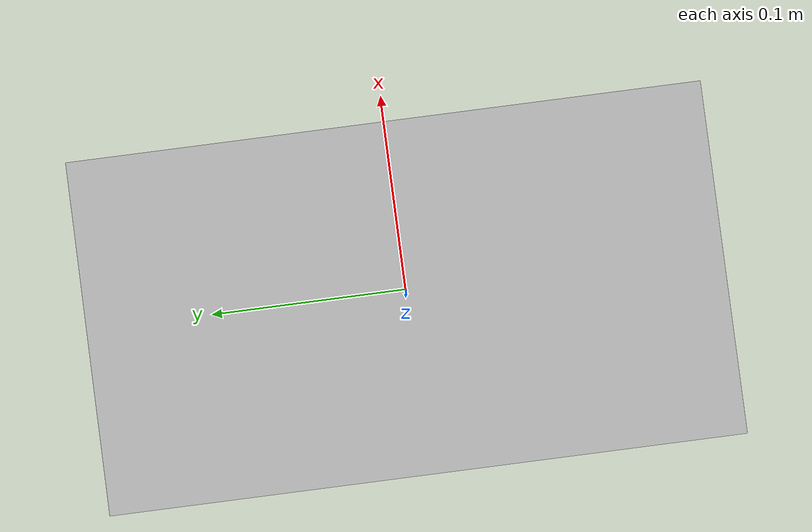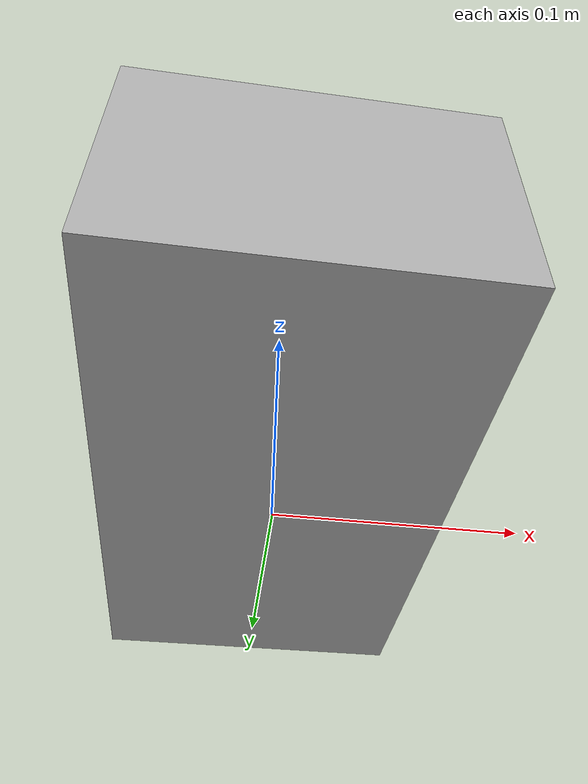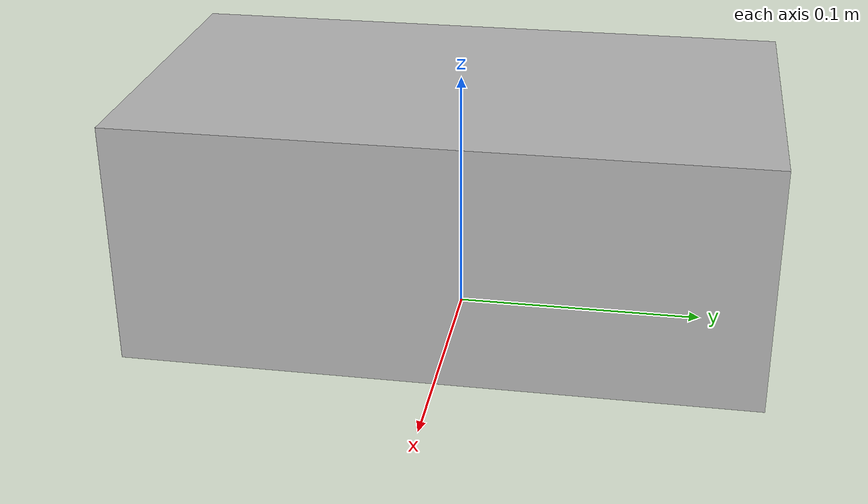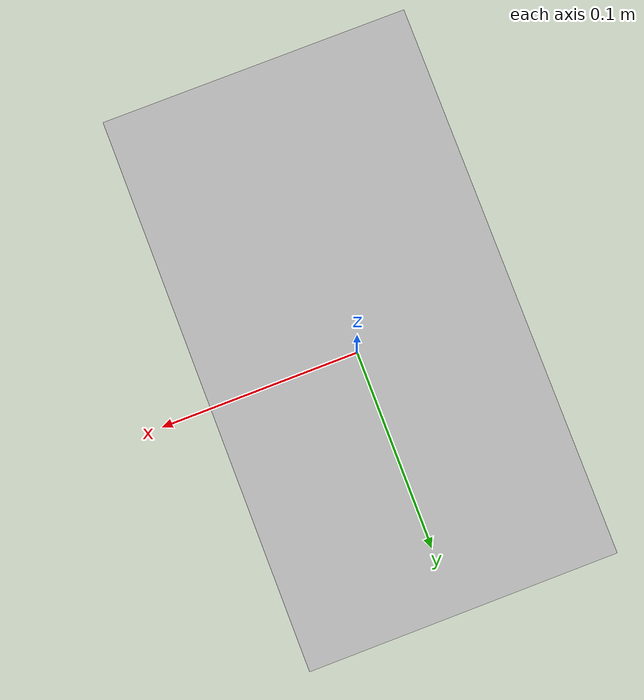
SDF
<sdf version='1.7'>
  <model name='XSensStyleModel_template'>
    <link name='Pelvis'>
      <inertial>
        <pose>0 0 0.049743 0 -0 0</pose>
        <mass>4.976</mass>
        <inertia>
          <ixx>0.029678</ixx>
          <ixy>0</ixy>
          <ixz>0</ixz>
          <iyy>0.011854</iyy>
          <iyz>0</iyz>
          <izz>0.033653</izz>
        </inertia>
      </inertial>
      <collision name='Pelvis_collision'>
        <pose>0 0 0.049743 0 -0 0</pose>
        <geometry>
          <box>
            <size>0.13815 0.24914 0.097469</size>
          </box>
        </geometry>
      </collision>
      <visual name='Pelvis_visual'>
        <pose>0 0 0.049743 0 -0 0</pose>
        <geometry>
          <box>
            <size>0.13815 0.24914 0.097469</size>
          </box>
        </geometry>
      </visual>
    </link>
  </model>
</sdf>
